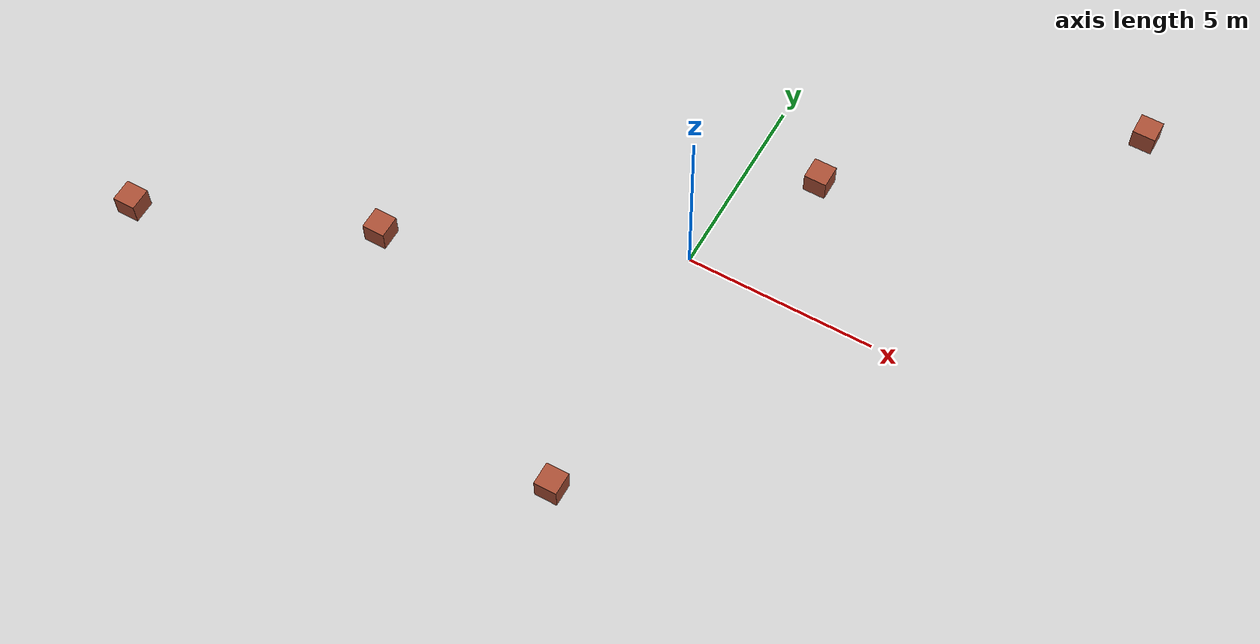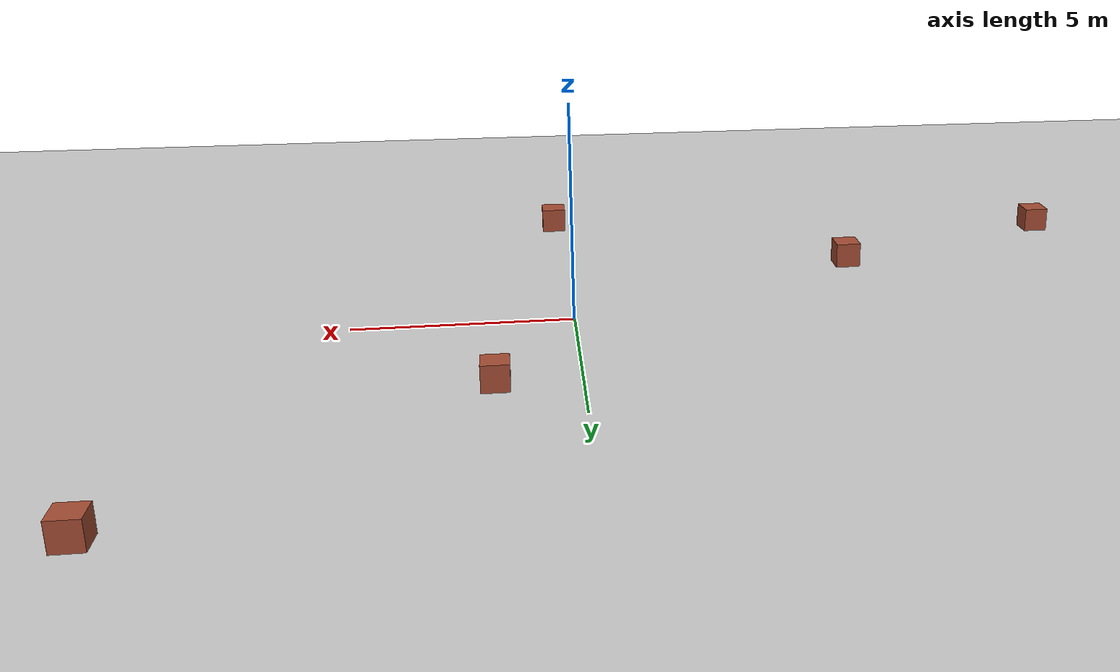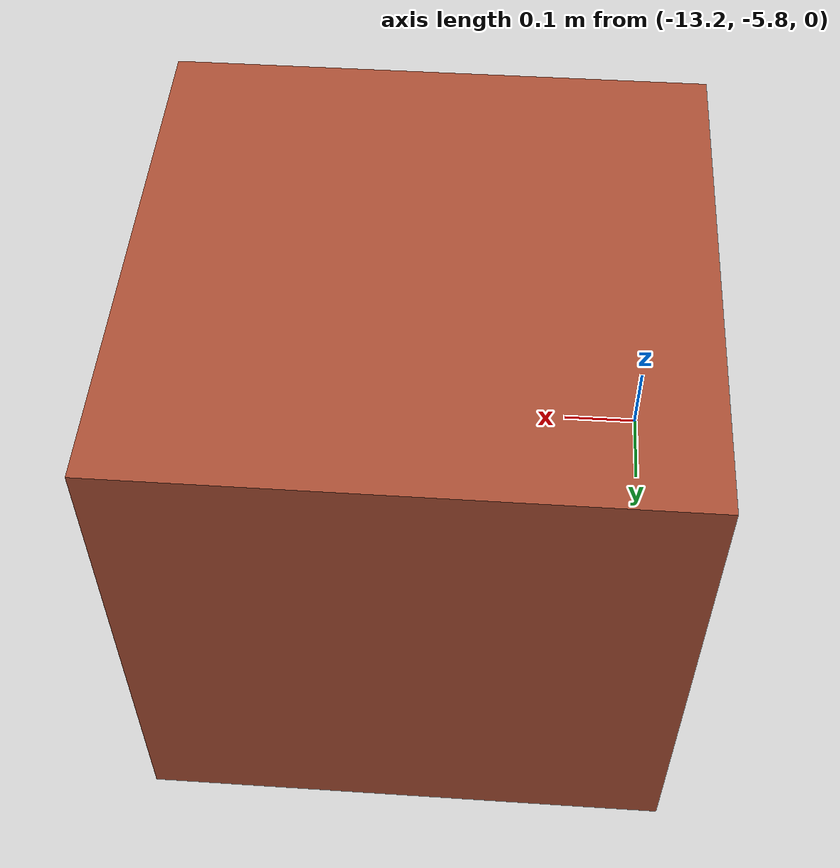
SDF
<sdf version="1.7">
 <world name="default">
  <light name="sun" type="directional">
   <pose>0 0 10 0 -0 0</pose>
   <diffuse>0.8 0.8 0.8 1</diffuse>
   <specular>0.2 0.2 0.2 1</specular>
   <attenuation>
    <range>1000</range>
    <constant>0.9</constant>
    <linear>0.01</linear>
    <quadratic>0.001</quadratic>
   </attenuation>
   <direction>-0.5 0.1 -0.9</direction>
   <spot><inner_angle>0</inner_angle><outer_angle>0</outer_angle><falloff>0</falloff></spot>
  </light>
  <model name="ground_plane">
   <static>1</static>
   <link name="link">
    <collision name="collision">
     <geometry><plane><normal>0 0 1</normal><size>100 100</size></plane></geometry>
     <surface><friction><ode><mu>100</mu><mu2>50</mu2></ode></friction></surface>
    </collision>
    <visual name="visual">
     <cast_shadows>0</cast_shadows>
     <geometry><plane><normal>0 0 1</normal><size>100 100</size></plane></geometry>
     <material>
      <script><uri>file://media/materials/scripts/gazebo.material</uri><name>Gazebo/Grey</name></script>
     </material>
    </visual>
   </link>
  </model>
  <gravity>0 0 -9.8</gravity>
  <magnetic_field>6e-06 2.3e-05 -4.2e-05</magnetic_field>
  <atmosphere type="adiabatic"/>
  <physics type="ode">
   <max_step_size>0.001</max_step_size>
   <real_time_factor>1</real_time_factor>
   <real_time_update_rate>1000</real_time_update_rate>
  </physics>
  <scene><ambient>0.4 0.4 0.4 1</ambient><background>0.7 0.7 0.7 1</background><shadows>1</shadows></scene>
  <spherical_coordinates>
   <surface_model>EARTH_WGS84</surface_model>
   <latitude_deg>0</latitude_deg>
   <longitude_deg>0</longitude_deg>
   <elevation>0</elevation>
   <heading_deg>0</heading_deg>
  </spherical_coordinates>
  <model name="Block">
   <pose>1.77481 3.53252 0.3 0 -0 0</pose>
   <static>0</static>
   <link name="link">
    <inertial>
     <mass>107.956</mass>
     <pose>0 0 0.3 0 -0 0</pose>
     <inertia>
      <ixx>8.95742</ixx>
      <ixy>9.96008e-17</ixy>
      <ixz>-2.59181e-17</ixz>
      <iyy>8.95742</iyy>
      <iyz>5.84976e-16</iyz>
      <izz>17.886</izz>
     </inertia>
    </inertial>
    <collision name="collision"><geometry><box><size>0.6 0.6 0.6</size></box></geometry></collision>
    <visual name="visual">
     <geometry><box><size>0.6 0.6 0.6</size></box></geometry>
     <material>
      <script><uri>file://media/materials/scripts/gazebo.material</uri><name>Gazebo/Bricks</name></script>
     </material>
    </visual>
   </link>
  </model>
  <model name="Block_0">
   <pose>0.209257 -7.09188 0.3 0 -0 0</pose>
   <static>0</static>
   <link name="link">
    <inertial>
     <mass>107.956</mass>
     <pose>0 0 0.3 0 -0 0</pose>
     <inertia>
      <ixx>8.95742</ixx>
      <ixy>9.96008e-17</ixy>
      <ixz>-2.59181e-17</ixz>
      <iyy>8.95742</iyy>
      <iyz>5.84976e-16</iyz>
      <izz>17.886</izz>
     </inertia>
    </inertial>
    <collision name="collision"><geometry><box><size>0.6 0.6 0.6</size></box></geometry></collision>
    <visual name="visual">
     <geometry><box><size>0.6 0.6 0.6</size></box></geometry>
     <material>
      <script><uri>file://media/materials/scripts/gazebo.material</uri><name>Gazebo/Bricks</name></script>
     </material>
    </visual>
   </link>
  </model>
  <model name="Block_1">
   <pose>-7.06478 -3.138 0.3 0 -0 0</pose>
   <static>0</static>
   <link name="link">
    <inertial>
     <mass>107.956</mass>
     <pose>0 0 0.3 0 -0 0</pose>
     <inertia>
      <ixx>8.95742</ixx>
      <ixy>9.96008e-17</ixy>
      <ixz>-2.59181e-17</ixz>
      <iyy>8.95742</iyy>
      <iyz>5.84976e-16</iyz>
      <izz>17.886</izz>
     </inertia>
    </inertial>
    <collision name="collision"><geometry><box><size>0.6 0.6 0.6</size></box></geometry></collision>
    <visual name="visual">
     <geometry><box><size>0.6 0.6 0.6</size></box></geometry>
     <material>
      <script><uri>file://media/materials/scripts/gazebo.material</uri><name>Gazebo/Bricks</name></script>
     </material>
    </visual>
   </link>
  </model>
  <model name="Block_2">
   <pose>-12.9146 -5.49944 0.3 0 -0 0</pose>
   <static>0</static>
   <link name="link">
    <inertial>
     <mass>107.956</mass>
     <pose>0 0 0.3 0 -0 0</pose>
     <inertia>
      <ixx>8.95742</ixx>
      <ixy>9.96008e-17</ixy>
      <ixz>-2.59181e-17</ixz>
      <iyy>8.95742</iyy>
      <iyz>5.84976e-16</iyz>
      <izz>17.886</izz>
     </inertia>
    </inertial>
    <collision name="collision"><geometry><box><size>0.6 0.6 0.6</size></box></geometry></collision>
    <visual name="visual">
     <geometry><box><size>0.6 0.6 0.6</size></box></geometry>
     <material>
      <script><uri>file://media/materials/scripts/gazebo.material</uri><name>Gazebo/Bricks</name></script>
     </material>
    </visual>
   </link>
  </model>
  <model name="Block_3">
   <pose>8.42211 8.81942 0.3 0 -0 0</pose>
   <static>0</static>
   <link name="link">
    <inertial>
     <mass>107.956</mass>
     <pose>0 0 0.3 0 -0 0</pose>
     <inertia>
      <ixx>8.95742</ixx>
      <ixy>9.96008e-17</ixy>
      <ixz>-2.59181e-17</ixz>
      <iyy>8.95742</iyy>
      <iyz>5.84976e-16</iyz>
      <izz>17.886</izz>
     </inertia>
    </inertial>
    <collision name="collision"><geometry><box><size>0.6 0.6 0.6</size></box></geometry></collision>
    <visual name="visual">
     <geometry><box><size>0.6 0.6 0.6</size></box></geometry>
     <material>
      <script><uri>file://media/materials/scripts/gazebo.material</uri><name>Gazebo/Bricks</name></script>
     </material>
    </visual>
   </link>
  </model>
 </world>
</sdf>
